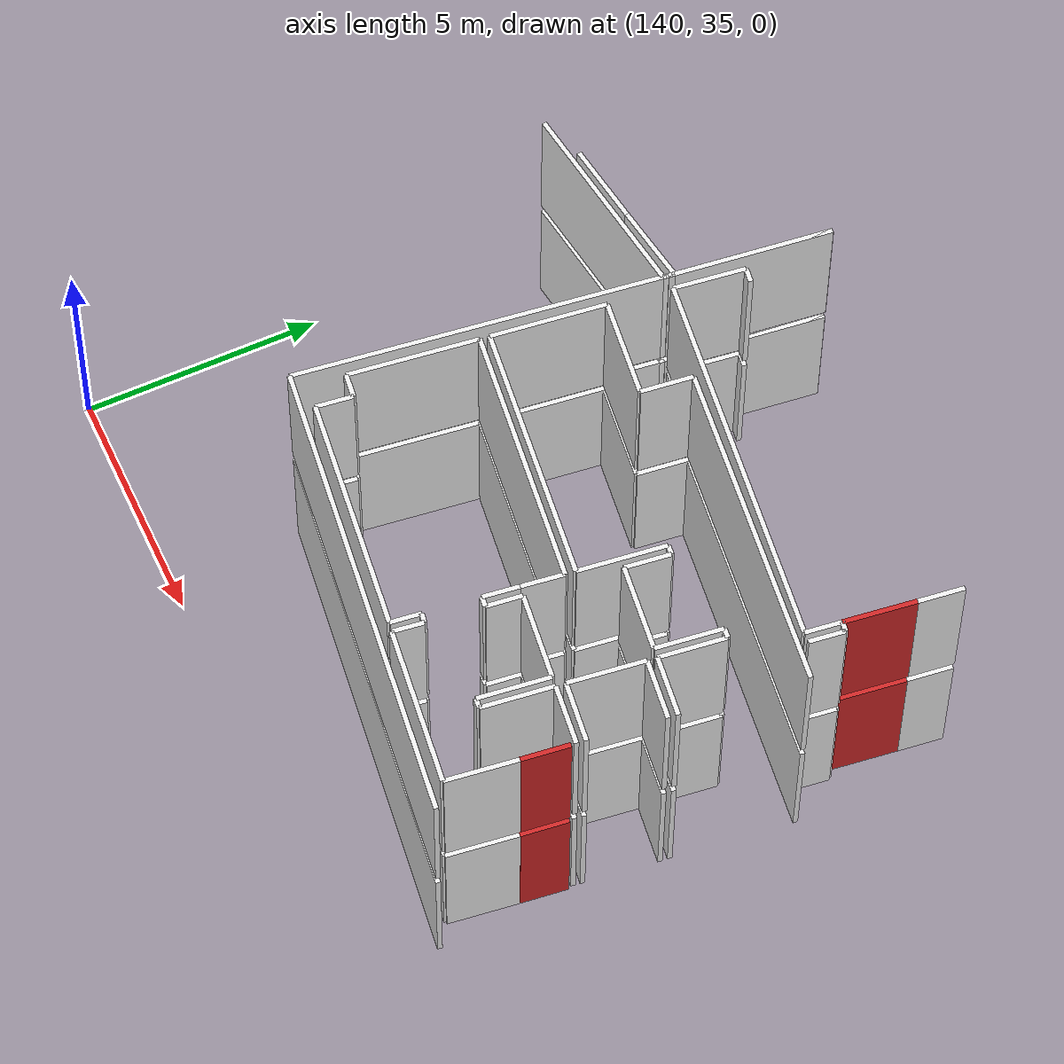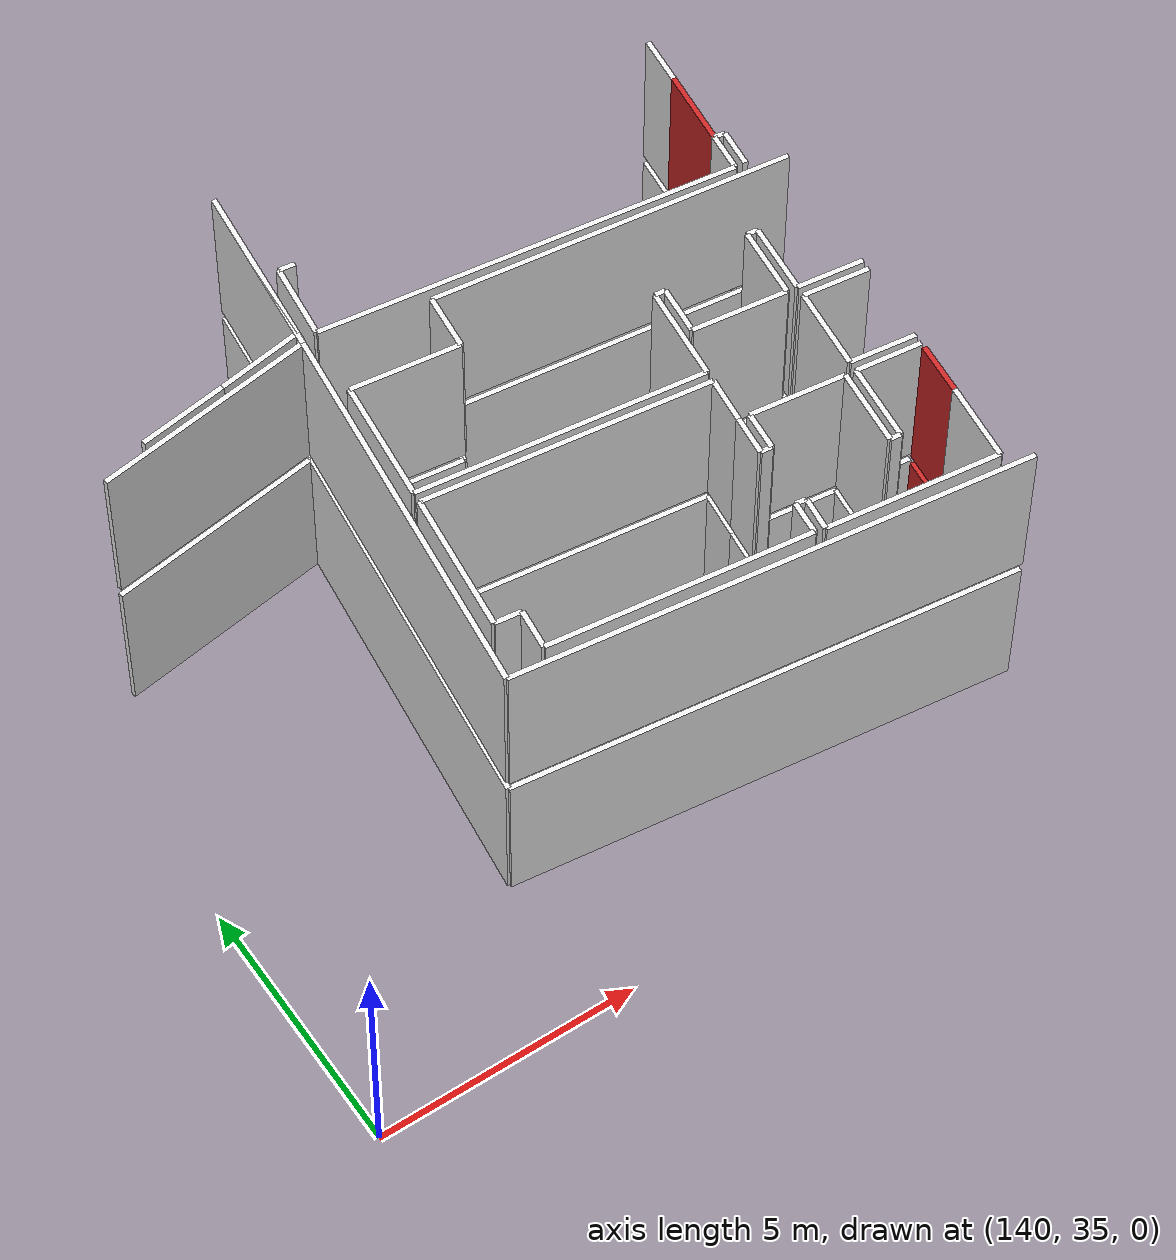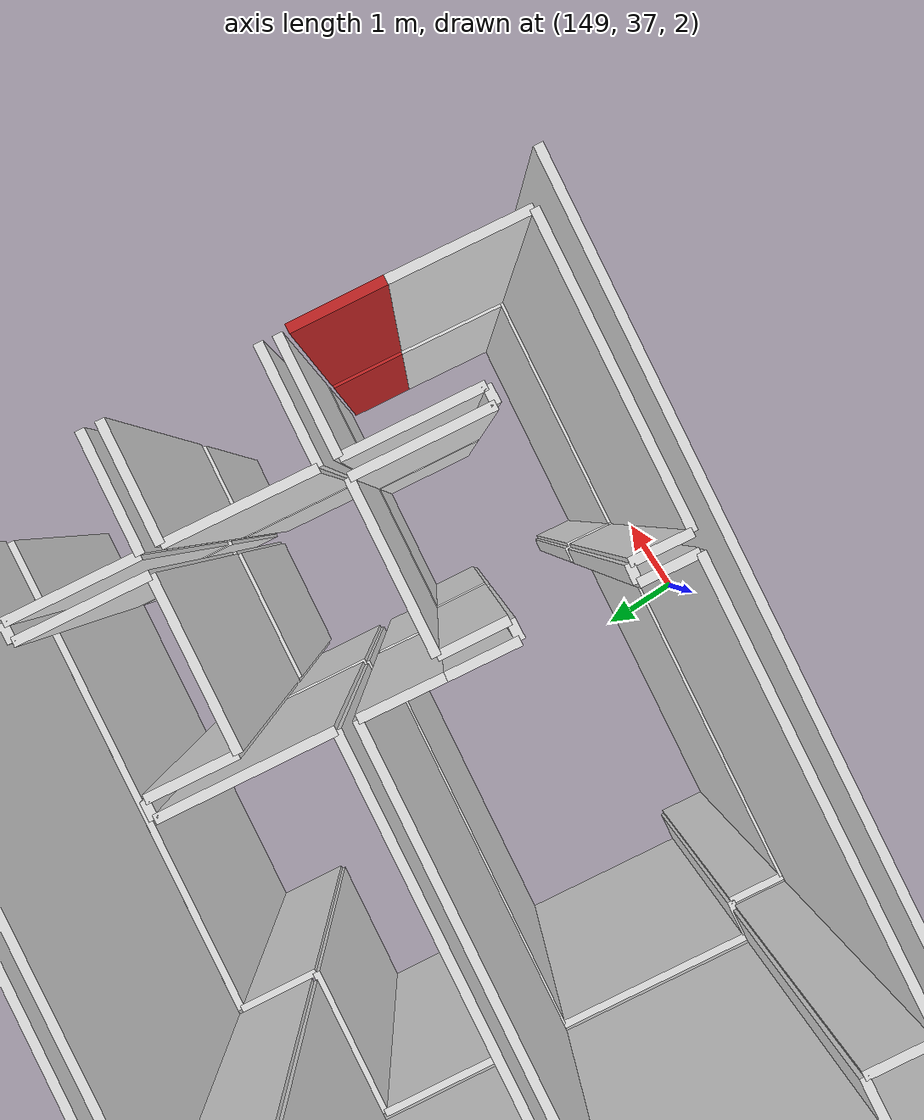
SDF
<sdf version="1.6">
 <world name="default">
  <model name="wall_153.8_39.0_0.0">
   <static>true</static>
   <pose>153.77499999999418 38.99500000011176 1.5 0 0 -1.6814535479881518</pose>
   <link name="link">
    <visual name="visual">
     <geometry><box><size>0.9960923654221514 0.1 3</size></box></geometry>
     <material>
      <script><uri>file://media/materials/scripts/gazebo.material</uri><name>Gazebo/Red</name></script>
     </material>
    </visual>
   </link>
  </model>
  <model name="wall_153.7_45.9_0.0">
   <static>true</static>
   <pose>153.6600000000035 45.92999999993481 1.5 0 0 -1.6918235466009592</pose>
   <link name="link">
    <visual name="visual">
     <geometry><box><size>1.4909057649436974 0.1 3</size></box></geometry>
     <material>
      <script><uri>file://media/materials/scripts/gazebo.material</uri><name>Gazebo/Red</name></script>
     </material>
    </visual>
   </link>
  </model>
  <model name="wall_150.4_39.6_0.0">
   <static>true</static>
   <pose>150.3649999999907 39.61500000022352 1.5 0 0 1.4513674008194029</pose>
   <link name="link">
    <visual name="visual">
     <geometry><box><size>0.7553806987169667 0.1 3</size></box></geometry>
     <material>
      <script><uri>file://media/materials/scripts/gazebo.material</uri><name>Gazebo/White</name></script>
     </material>
    </visual>
   </link>
  </model>
  <model name="wall_150.5_40.4_0.0">
   <static>true</static>
   <pose>150.4649999999965 40.43000000016764 1.5 0 0 1.4464413321830076</pose>
   <link name="link">
    <visual name="visual">
     <geometry><box><size>0.8868483522074317 0.1 3</size></box></geometry>
     <material>
      <script><uri>file://media/materials/scripts/gazebo.material</uri><name>Gazebo/White</name></script>
     </material>
    </visual>
   </link>
  </model>
  <model name="wall_147.8_41.2_0.0">
   <static>true</static>
   <pose>147.83500000002095 41.18500000005588 1.5 0 0 3.0248080581405947</pose>
   <link name="link">
    <visual name="visual">
     <geometry><box><size>5.406829015218547 0.1 3</size></box></geometry>
     <material>
      <script><uri>file://media/materials/scripts/gazebo.material</uri><name>Gazebo/White</name></script>
     </material>
    </visual>
   </link>
  </model>
  <model name="wall_145.0_40.2_0.0">
   <static>true</static>
   <pose>144.9900000000198 40.16500000003725 1.5 0 0 -1.690077564147906</pose>
   <link name="link">
    <visual name="visual">
     <geometry><box><size>2.689107658612167 0.1 3</size></box></geometry>
     <material>
      <script><uri>file://media/materials/scripts/gazebo.material</uri><name>Gazebo/White</name></script>
     </material>
    </visual>
   </link>
  </model>
  <model name="wall_145.1_38.8_0.0">
   <static>true</static>
   <pose>145.0800000000163 38.800000000046566 1.5 0 0 -0.11942892612851068</pose>
   <link name="link">
    <visual name="visual">
     <geometry><box><size>0.5035871324872246 0.1 3</size></box></geometry>
     <material>
      <script><uri>file://media/materials/scripts/gazebo.material</uri><name>Gazebo/White</name></script>
     </material>
    </visual>
   </link>
  </model>
  <model name="wall_145.3_38.4_0.0">
   <static>true</static>
   <pose>145.2850000000035 38.389999999897555 1.5 0 0 -1.6886684299881376</pose>
   <link name="link">
    <visual name="visual">
     <geometry><box><size>0.7653103947893748 0.1 3</size></box></geometry>
     <material>
      <script><uri>file://media/materials/scripts/gazebo.material</uri><name>Gazebo/White</name></script>
     </material>
    </visual>
   </link>
  </model>
  <model name="wall_147.7_37.7_0.0">
   <static>true</static>
   <pose>147.67499999998836 37.7249999998603 1.5 0 0 -0.11651301006280392</pose>
   <link name="link">
    <visual name="visual">
     <geometry><box><size>4.90324382422122 0.1 3</size></box></geometry>
     <material>
      <script><uri>file://media/materials/scripts/gazebo.material</uri><name>Gazebo/White</name></script>
     </material>
    </visual>
   </link>
  </model>
  <model name="wall_150.1_37.8_0.0">
   <static>true</static>
   <pose>150.14499999998952 37.75499999988824 1.5 0 0 1.4601391055905788</pose>
   <link name="link">
    <visual name="visual">
     <geometry><box><size>0.6338769595593153 0.1 3</size></box></geometry>
     <material>
      <script><uri>file://media/materials/scripts/gazebo.material</uri><name>Gazebo/White</name></script>
     </material>
    </visual>
   </link>
  </model>
  <model name="wall_150.3_38.1_0.0">
   <static>true</static>
   <pose>150.27999999999884 38.05499999993481 1.5 0 0 -0.14888994659904642</pose>
   <link name="link">
    <visual name="visual">
     <geometry><box><size>0.20223748414268597 0.1 3</size></box></geometry>
     <material>
      <script><uri>file://media/materials/scripts/gazebo.material</uri><name>Gazebo/White</name></script>
     </material>
    </visual>
   </link>
  </model>
  <model name="wall_150.3_37.7_0.0">
   <static>true</static>
   <pose>150.3399999999965 37.71999999997206 1.5 0 0 -1.695151321341658</pose>
   <link name="link">
    <visual name="visual">
     <geometry><box><size>0.6449806199952839 0.1 3</size></box></geometry>
     <material>
      <script><uri>file://media/materials/scripts/gazebo.material</uri><name>Gazebo/White</name></script>
     </material>
    </visual>
   </link>
  </model>
  <model name="wall_151.9_37.2_0.0">
   <static>true</static>
   <pose>151.9199999999837 37.20999999996275 1.5 0 0 -0.11675057835937525</pose>
   <link name="link">
    <visual name="visual">
     <geometry><box><size>3.2622078413023767 0.1 3</size></box></geometry>
     <material>
      <script><uri>file://media/materials/scripts/gazebo.material</uri><name>Gazebo/White</name></script>
     </material>
    </visual>
   </link>
  </model>
  <model name="wall_153.6_37.8_0.0">
   <static>true</static>
   <pose>153.62999999997555 37.76000000000931 1.5 0 0 1.449769106988834</pose>
   <link name="link">
    <visual name="visual">
     <geometry><box><size>1.4909057649436974 0.1 3</size></box></geometry>
     <material>
      <script><uri>file://media/materials/scripts/gazebo.material</uri><name>Gazebo/White</name></script>
     </material>
    </visual>
   </link>
  </model>
  <model name="wall_153.2_39.7_0.0">
   <static>true</static>
   <pose>153.22000000000116 39.65999999991618 1.5 0 0 3.0291655226601732</pose>
   <link name="link">
    <visual name="visual">
     <geometry><box><size>1.2478781992477335 0.1 3</size></box></geometry>
     <material>
      <script><uri>file://media/materials/scripts/gazebo.material</uri><name>Gazebo/White</name></script>
     </material>
    </visual>
   </link>
  </model>
  <model name="wall_152.5_39.0_0.0">
   <static>true</static>
   <pose>152.51499999998487 38.98999999999069 1.5 0 0 -1.6851599802083586</pose>
   <link name="link">
    <visual name="visual">
     <geometry><box><size>1.4897315194152685 0.1 3</size></box></geometry>
     <material>
      <script><uri>file://media/materials/scripts/gazebo.material</uri><name>Gazebo/White</name></script>
     </material>
    </visual>
   </link>
  </model>
  <model name="wall_152.3_38.3_0.0">
   <static>true</static>
   <pose>152.3299999999872 38.26000000000931 1.5 0 0 3.0419240010121844</pose>
   <link name="link">
    <visual name="visual">
     <geometry><box><size>0.20099751243585498 0.1 3</size></box></geometry>
     <material>
      <script><uri>file://media/materials/scripts/gazebo.material</uri><name>Gazebo/White</name></script>
     </material>
    </visual>
   </link>
  </model>
  <model name="wall_152.3_39.0_0.0">
   <static>true</static>
   <pose>152.31500000000233 39.01000000000931 1.5 0 0 1.4564326733426174</pose>
   <link name="link">
    <visual name="visual">
     <geometry><box><size>1.4897315194219107 0.1 3</size></box></geometry>
     <material>
      <script><uri>file://media/materials/scripts/gazebo.material</uri><name>Gazebo/White</name></script>
     </material>
    </visual>
   </link>
  </model>
  <model name="wall_151.5_39.9_0.0">
   <static>true</static>
   <pose>151.50500000000466 39.85499999998137 1.5 0 0 3.0248080581431034</pose>
   <link name="link">
    <visual name="visual">
     <geometry><box><size>1.8022763384447233 0.1 3</size></box></geometry>
     <material>
      <script><uri>file://media/materials/scripts/gazebo.material</uri><name>Gazebo/White</name></script>
     </material>
    </visual>
   </link>
  </model>
  <model name="wall_150.6_39.6_0.0">
   <static>true</static>
   <pose>150.57000000000698 39.59000000008382 1.5 0 0 -1.6784861976067038</pose>
   <link name="link">
    <visual name="visual">
     <geometry><box><size>0.7443117623918901 0.1 3</size></box></geometry>
     <material>
      <script><uri>file://media/materials/scripts/gazebo.material</uri><name>Gazebo/White</name></script>
     </material>
    </visual>
   </link>
  </model>
  <model name="wall_150.4_39.2_0.0">
   <static>true</static>
   <pose>150.42500000001746 39.230000000214204 1.5 0 0 3.0466409471685547</pose>
   <link name="link">
    <visual name="visual">
     <geometry><box><size>0.21095023111991618 0.1 3</size></box></geometry>
     <material>
      <script><uri>file://media/materials/scripts/gazebo.material</uri><name>Gazebo/White</name></script>
     </material>
    </visual>
   </link>
  </model>
  <model name="wall_153.8_47.1_0.0">
   <static>true</static>
   <pose>153.80499999999302 47.139999999897555 1.5 0 0 -1.6872877874817485</pose>
   <link name="link">
    <visual name="visual">
     <geometry><box><size>0.9464142855493431 0.1 3</size></box></geometry>
     <material>
      <script><uri>file://media/materials/scripts/gazebo.material</uri><name>Gazebo/White</name></script>
     </material>
    </visual>
   </link>
  </model>
  <model name="wall_153.5_44.8_0.0">
   <static>true</static>
   <pose>153.52499999999418 44.81499999994412 1.5 0 0 -1.6902252528468988</pose>
   <link name="link">
    <visual name="visual">
     <geometry><box><size>0.7553806987239018 0.1 3</size></box></geometry>
     <material>
      <script><uri>file://media/materials/scripts/gazebo.material</uri><name>Gazebo/White</name></script>
     </material>
    </visual>
   </link>
  </model>
  <model name="wall_149.6_44.9_0.0">
   <static>true</static>
   <pose>149.55499999999302 44.91500000003725 1.5 0 0 3.0211592075440525</pose>
   <link name="link">
    <visual name="visual">
     <geometry><box><size>7.907275131168029 0.1 3</size></box></geometry>
     <material>
      <script><uri>file://media/materials/scripts/gazebo.material</uri><name>Gazebo/White</name></script>
     </material>
    </visual>
   </link>
  </model>
  <model name="wall_145.7_46.1_0.0">
   <static>true</static>
   <pose>145.72000000000116 46.13000000012107 1.5 0 0 1.449769106988834</pose>
   <link name="link">
    <visual name="visual">
     <geometry><box><size>1.4909057649436974 0.1 3</size></box></geometry>
     <material>
      <script><uri>file://media/materials/scripts/gazebo.material</uri><name>Gazebo/White</name></script>
     </material>
    </visual>
   </link>
  </model>
  <model name="wall_146.0_46.9_0.0">
   <static>true</static>
   <pose>145.95999999999185 46.85000000009313 1.5 0 0 -0.132551532423765</pose>
   <link name="link">
    <visual name="visual">
     <geometry><box><size>0.3026549190018152 0.1 3</size></box></geometry>
     <material>
      <script><uri>file://media/materials/scripts/gazebo.material</uri><name>Gazebo/White</name></script>
     </material>
    </visual>
   </link>
  </model>
  <model name="wall_153.4_41.4_0.0">
   <static>true</static>
   <pose>153.43499999999767 41.43499999982305 1.5 0 0 3.022163727644903</pose>
   <link name="link">
    <visual name="visual">
     <geometry><box><size>1.258967831190321 0.1 3</size></box></geometry>
     <material>
      <script><uri>file://media/materials/scripts/gazebo.material</uri><name>Gazebo/White</name></script>
     </material>
    </visual>
   </link>
  </model>
  <model name="wall_152.7_40.7_0.0">
   <static>true</static>
   <pose>152.7149999999965 40.71999999997206 1.5 0 0 -1.6904748161031404</pose>
   <link name="link">
    <visual name="visual">
     <geometry><box><size>1.5913830458958753 0.1 3</size></box></geometry>
     <material>
      <script><uri>file://media/materials/scripts/gazebo.material</uri><name>Gazebo/White</name></script>
     </material>
    </visual>
   </link>
  </model>
  <model name="wall_153.2_39.9_0.0">
   <static>true</static>
   <pose>153.24499999999534 39.85499999998137 1.5 0 0 -0.11942892631213106</pose>
   <link name="link">
    <visual name="visual">
     <geometry><box><size>1.2589678312458021 0.1 3</size></box></geometry>
     <material>
      <script><uri>file://media/materials/scripts/gazebo.material</uri><name>Gazebo/White</name></script>
     </material>
    </visual>
   </link>
  </model>
  <model name="wall_153.7_44.8_0.0">
   <static>true</static>
   <pose>153.72500000000582 44.79000000003725 1.5 0 0 1.4497691069877865</pose>
   <link name="link">
    <visual name="visual">
     <geometry><box><size>0.74545288270649 0.1 3</size></box></geometry>
     <material>
      <script><uri>file://media/materials/scripts/gazebo.material</uri><name>Gazebo/White</name></script>
     </material>
    </visual>
   </link>
  </model>
  <model name="wall_153.7_45.2_0.0">
   <static>true</static>
   <pose>153.6700000000128 45.175000000046566 1.5 0 0 2.992702706990747</pose>
   <link name="link">
    <visual name="visual">
     <geometry><box><size>0.20223748414268597 0.1 3</size></box></geometry>
     <material>
      <script><uri>file://media/materials/scripts/gazebo.material</uri><name>Gazebo/White</name></script>
     </material>
    </visual>
   </link>
  </model>
  <model name="wall_153.5_41.6_0.0">
   <static>true</static>
   <pose>153.4550000000163 41.63500000000931 1.5 0 0 3.022163727644903</pose>
   <link name="link">
    <visual name="visual">
     <geometry><box><size>1.258967831190321 0.1 3</size></box></geometry>
     <material>
      <script><uri>file://media/materials/scripts/gazebo.material</uri><name>Gazebo/White</name></script>
     </material>
    </visual>
   </link>
  </model>
  <model name="wall_152.9_42.4_0.0">
   <static>true</static>
   <pose>152.9100000000035 42.39999999990687 1.5 0 0 1.4553696664370197</pose>
   <link name="link">
    <visual name="visual">
     <geometry><box><size>1.3892443988310157 0.1 3</size></box></geometry>
     <material>
      <script><uri>file://media/materials/scripts/gazebo.material</uri><name>Gazebo/White</name></script>
     </material>
    </visual>
   </link>
  </model>
  <model name="wall_152.9_43.1_0.0">
   <static>true</static>
   <pose>152.88999999998487 43.0999999998603 1.5 0 0 3.0419240010121844</pose>
   <link name="link">
    <visual name="visual">
     <geometry><box><size>0.20099751243585498 0.1 3</size></box></geometry>
     <material>
      <script><uri>file://media/materials/scripts/gazebo.material</uri><name>Gazebo/White</name></script>
     </material>
    </visual>
   </link>
  </model>
  <model name="wall_152.7_42.4_0.0">
   <static>true</static>
   <pose>152.70999999999185 42.419999999925494 1.5 0 0 -1.6862229871527734</pose>
   <link name="link">
    <visual name="visual">
     <geometry><box><size>1.3892443988310157 0.1 3</size></box></geometry>
     <material>
      <script><uri>file://media/materials/scripts/gazebo.material</uri><name>Gazebo/White</name></script>
     </material>
    </visual>
   </link>
  </model>
  <model name="wall_151.7_41.8_0.0">
   <static>true</static>
   <pose>151.73500000001513 41.83499999996275 1.5 0 0 3.02480805813934</pose>
   <link name="link">
    <visual name="visual">
     <geometry><box><size>1.8022763383869123 0.1 3</size></box></geometry>
     <material>
      <script><uri>file://media/materials/scripts/gazebo.material</uri><name>Gazebo/White</name></script>
     </material>
    </visual>
   </link>
  </model>
  <model name="wall_150.9_42.4_0.0">
   <static>true</static>
   <pose>150.89500000001863 42.40999999991618 1.5 0 0 1.4543048661080447</pose>
   <link name="link">
    <visual name="visual">
     <geometry><box><size>0.9464142855493431 0.1 3</size></box></geometry>
     <material>
      <script><uri>file://media/materials/scripts/gazebo.material</uri><name>Gazebo/White</name></script>
     </material>
    </visual>
   </link>
  </model>
  <model name="wall_150.9_42.9_0.0">
   <static>true</static>
   <pose>150.85000000000582 42.889999999897555 1.5 0 0 3.0419240010121844</pose>
   <link name="link">
    <visual name="visual">
     <geometry><box><size>0.20099751243585498 0.1 3</size></box></geometry>
     <material>
      <script><uri>file://media/materials/scripts/gazebo.material</uri><name>Gazebo/White</name></script>
     </material>
    </visual>
   </link>
  </model>
  <model name="wall_150.6_42.0_0.0">
   <static>true</static>
   <pose>150.64499999998952 41.98999999999069 1.5 0 0 -1.6856729322336463</pose>
   <link name="link">
    <visual name="visual">
     <geometry><box><size>1.8320753257982048 0.1 3</size></box></geometry>
     <material>
      <script><uri>file://media/materials/scripts/gazebo.material</uri><name>Gazebo/White</name></script>
     </material>
    </visual>
   </link>
  </model>
  <model name="wall_147.9_41.4_0.0">
   <static>true</static>
   <pose>147.85499999998137 41.390000000130385 1.5 0 0 3.026645366783984</pose>
   <link name="link">
    <visual name="visual">
     <geometry><box><size>5.405672946089928 0.1 3</size></box></geometry>
     <material>
      <script><uri>file://media/materials/scripts/gazebo.material</uri><name>Gazebo/White</name></script>
     </material>
    </visual>
   </link>
  </model>
  <model name="wall_145.3_42.9_0.0">
   <static>true</static>
   <pose>145.30499999999302 42.88500000000931 1.5 0 0 1.4573613349631278</pose>
   <link name="link">
    <visual name="visual">
     <geometry><box><size>2.385330165476587 0.1 3</size></box></geometry>
     <material>
      <script><uri>file://media/materials/scripts/gazebo.material</uri><name>Gazebo/White</name></script>
     </material>
    </visual>
   </link>
  </model>
  <model name="wall_146.5_43.9_0.0">
   <static>true</static>
   <pose>146.45999999999185 43.949999999953434 1.5 0 0 -0.11710874445097873</pose>
   <link name="link">
    <visual name="visual">
     <geometry><box><size>2.0540691321857394 0.1 3</size></box></geometry>
     <material>
      <script><uri>file://media/materials/scripts/gazebo.material</uri><name>Gazebo/White</name></script>
     </material>
    </visual>
   </link>
  </model>
  <model name="wall_147.5_44.4_0.0">
   <static>true</static>
   <pose>147.53999999997905 44.37000000011176 1.5 0 0 1.460139105632832</pose>
   <link name="link">
    <visual name="visual">
     <geometry><box><size>1.086646216650026 0.1 3</size></box></geometry>
     <material>
      <script><uri>file://media/materials/scripts/gazebo.material</uri><name>Gazebo/White</name></script>
     </material>
    </visual>
   </link>
  </model>
  <model name="wall_151.0_44.5_0.0">
   <static>true</static>
   <pose>150.9899999999907 44.5250000001397 1.5 0 0 -0.11308479368536209</pose>
   <link name="link">
    <visual name="visual">
     <geometry><box><size>6.8235841022447685 0.1 3</size></box></geometry>
     <material>
      <script><uri>file://media/materials/scripts/gazebo.material</uri><name>Gazebo/White</name></script>
     </material>
    </visual>
   </link>
  </model>
  <model name="wall_145.5_47.2_0.0">
   <static>true</static>
   <pose>145.52999999999884 47.169999999925494 1.5 0 0 -1.6814535479747077</pose>
   <link name="link">
    <visual name="visual">
     <geometry><box><size>3.259938649956506 0.1 3</size></box></geometry>
     <material>
      <script><uri>file://media/materials/scripts/gazebo.material</uri><name>Gazebo/White</name></script>
     </material>
    </visual>
   </link>
  </model>
  <model name="wall_144.5_45.4_0.0">
   <static>true</static>
   <pose>144.53999999997905 45.41499999980442 1.5 0 0 -2.9764439761635133</pose>
   <link name="link">
    <visual name="visual">
     <geometry><box><size>1.6423458831789883 0.1 3</size></box></geometry>
     <material>
      <script><uri>file://media/materials/scripts/gazebo.material</uri><name>Gazebo/White</name></script>
     </material>
    </visual>
   </link>
  </model>
  <model name="wall_142.9_45.1_0.0">
   <static>true</static>
   <pose>142.88999999998487 45.14999999990687 1.5 0 0 -2.9880488711795428</pose>
   <link name="link">
    <visual name="visual">
     <geometry><box><size>1.6999999999589122 0.1 3</size></box></geometry>
     <material>
      <script><uri>file://media/materials/scripts/gazebo.material</uri><name>Gazebo/White</name></script>
     </material>
    </visual>
   </link>
  </model>
  <model name="wall_143.2_45.0_0.0">
   <static>true</static>
   <pose>143.22500000000582 45.0 1.5 0 0 0.15157309554865728</pose>
   <link name="link">
    <visual name="visual">
     <geometry><box><size>4.238596465764388 0.1 3</size></box></geometry>
     <material>
      <script><uri>file://media/materials/scripts/gazebo.material</uri><name>Gazebo/White</name></script>
     </material>
    </visual>
   </link>
  </model>
  <model name="wall_144.9_41.6_0.0">
   <static>true</static>
   <pose>144.8649999999907 41.574999999953434 1.5 0 0 -1.6916990911057475</pose>
   <link name="link">
    <visual name="visual">
     <geometry><box><size>7.545077865498275 0.1 3</size></box></geometry>
     <material>
      <script><uri>file://media/materials/scripts/gazebo.material</uri><name>Gazebo/White</name></script>
     </material>
    </visual>
   </link>
  </model>
  <model name="wall_149.2_37.3_0.0">
   <static>true</static>
   <pose>149.20999999999185 37.25500000012107 1.5 0 0 -0.11922354502951144</pose>
   <link name="link">
    <visual name="visual">
     <geometry><box><size>9.668634857127264 0.1 3</size></box></geometry>
     <material>
      <script><uri>file://media/materials/scripts/gazebo.material</uri><name>Gazebo/White</name></script>
     </material>
    </visual>
   </link>
  </model>
  <model name="wall_145.5_47.1_0.0">
   <static>true</static>
   <pose>145.51500000001397 47.05499999993481 1.5 0 0 -1.6827185694293054</pose>
   <link name="link">
    <visual name="visual">
     <geometry><box><size>3.4918476486572034 0.1 3</size></box></geometry>
     <material>
      <script><uri>file://media/materials/scripts/gazebo.material</uri><name>Gazebo/White</name></script>
     </material>
    </visual>
   </link>
  </model>
  <model name="wall_145.3_45.4_0.0">
   <static>true</static>
   <pose>145.3300000000163 45.36999999987893 1.5 0 0 1.373400766945016</pose>
   <link name="link">
    <visual name="visual">
     <geometry><box><size>0.10198039036683233 0.1 3</size></box></geometry>
     <material>
      <script><uri>file://media/materials/scripts/gazebo.material</uri><name>Gazebo/White</name></script>
     </material>
    </visual>
   </link>
  </model>
  <model name="wall_145.3_45.5_0.0">
   <static>true</static>
   <pose>145.34500000000116 45.484999999869615 1.5 0 0 1.4940244358332768</pose>
   <link name="link">
    <visual name="visual">
     <geometry><box><size>0.13038404798887343 0.1 3</size></box></geometry>
     <material>
      <script><uri>file://media/materials/scripts/gazebo.material</uri><name>Gazebo/White</name></script>
     </material>
    </visual>
   </link>
  </model>
  <model name="wall_153.8_39.0_3.2">
   <static>true</static>
   <pose>153.77499999999418 38.99500000011176 4.7 0 0 -1.6814535479881518</pose>
   <link name="link">
    <visual name="visual">
     <geometry><box><size>0.9960923654221514 0.1 3</size></box></geometry>
     <material>
      <script><uri>file://media/materials/scripts/gazebo.material</uri><name>Gazebo/Red</name></script>
     </material>
    </visual>
   </link>
  </model>
  <model name="wall_153.7_45.9_3.2">
   <static>true</static>
   <pose>153.6600000000035 45.92999999993481 4.7 0 0 -1.6918235466009592</pose>
   <link name="link">
    <visual name="visual">
     <geometry><box><size>1.4909057649436974 0.1 3</size></box></geometry>
     <material>
      <script><uri>file://media/materials/scripts/gazebo.material</uri><name>Gazebo/Red</name></script>
     </material>
    </visual>
   </link>
  </model>
  <model name="wall_150.4_39.6_3.2">
   <static>true</static>
   <pose>150.3649999999907 39.61500000022352 4.7 0 0 1.4513674008194029</pose>
   <link name="link">
    <visual name="visual">
     <geometry><box><size>0.7553806987169667 0.1 3</size></box></geometry>
     <material>
      <script><uri>file://media/materials/scripts/gazebo.material</uri><name>Gazebo/White</name></script>
     </material>
    </visual>
   </link>
  </model>
  <model name="wall_150.5_40.4_3.2">
   <static>true</static>
   <pose>150.4649999999965 40.43000000016764 4.7 0 0 1.4464413321830076</pose>
   <link name="link">
    <visual name="visual">
     <geometry><box><size>0.8868483522074317 0.1 3</size></box></geometry>
     <material>
      <script><uri>file://media/materials/scripts/gazebo.material</uri><name>Gazebo/White</name></script>
     </material>
    </visual>
   </link>
  </model>
  <model name="wall_147.8_41.2_3.2">
   <static>true</static>
   <pose>147.83500000002095 41.18500000005588 4.7 0 0 3.0248080581405947</pose>
   <link name="link">
    <visual name="visual">
     <geometry><box><size>5.406829015218547 0.1 3</size></box></geometry>
     <material>
      <script><uri>file://media/materials/scripts/gazebo.material</uri><name>Gazebo/White</name></script>
     </material>
    </visual>
   </link>
  </model>
  <model name="wall_145.0_40.2_3.2">
   <static>true</static>
   <pose>144.9900000000198 40.16500000003725 4.7 0 0 -1.690077564147906</pose>
   <link name="link">
    <visual name="visual">
     <geometry><box><size>2.689107658612167 0.1 3</size></box></geometry>
     <material>
      <script><uri>file://media/materials/scripts/gazebo.material</uri><name>Gazebo/White</name></script>
     </material>
    </visual>
   </link>
  </model>
  <model name="wall_145.1_38.8_3.2">
   <static>true</static>
   <pose>145.0800000000163 38.800000000046566 4.7 0 0 -0.11942892612851068</pose>
   <link name="link">
    <visual name="visual">
     <geometry><box><size>0.5035871324872246 0.1 3</size></box></geometry>
     <material>
      <script><uri>file://media/materials/scripts/gazebo.material</uri><name>Gazebo/White</name></script>
     </material>
    </visual>
   </link>
  </model>
  <model name="wall_145.3_38.4_3.2">
   <static>true</static>
   <pose>145.2850000000035 38.389999999897555 4.7 0 0 -1.6886684299881376</pose>
   <link name="link">
    <visual name="visual">
     <geometry><box><size>0.7653103947893748 0.1 3</size></box></geometry>
     <material>
      <script><uri>file://media/materials/scripts/gazebo.material</uri><name>Gazebo/White</name></script>
     </material>
    </visual>
   </link>
  </model>
  <model name="wall_147.7_37.7_3.2">
   <static>true</static>
   <pose>147.67499999998836 37.7249999998603 4.7 0 0 -0.11651301006280392</pose>
   <link name="link">
    <visual name="visual">
     <geometry><box><size>4.90324382422122 0.1 3</size></box></geometry>
     <material>
      <script><uri>file://media/materials/scripts/gazebo.material</uri><name>Gazebo/White</name></script>
     </material>
    </visual>
   </link>
  </model>
  <model name="wall_150.1_37.8_3.2">
   <static>true</static>
   <pose>150.14499999998952 37.75499999988824 4.7 0 0 1.4601391055905788</pose>
   <link name="link">
    <visual name="visual">
     <geometry><box><size>0.6338769595593153 0.1 3</size></box></geometry>
     <material>
      <script><uri>file://media/materials/scripts/gazebo.material</uri><name>Gazebo/White</name></script>
     </material>
    </visual>
   </link>
  </model>
  <model name="wall_150.3_38.1_3.2">
   <static>true</static>
   <pose>150.27999999999884 38.05499999993481 4.7 0 0 -0.14888994659904642</pose>
   <link name="link">
    <visual name="visual">
     <geometry><box><size>0.20223748414268597 0.1 3</size></box></geometry>
     <material>
      <script><uri>file://media/materials/scripts/gazebo.material</uri><name>Gazebo/White</name></script>
     </material>
    </visual>
   </link>
  </model>
  <model name="wall_150.3_37.7_3.2">
   <static>true</static>
   <pose>150.3399999999965 37.71999999997206 4.7 0 0 -1.695151321341658</pose>
   <link name="link">
    <visual name="visual">
     <geometry><box><size>0.6449806199952839 0.1 3</size></box></geometry>
     <material>
      <script><uri>file://media/materials/scripts/gazebo.material</uri><name>Gazebo/White</name></script>
     </material>
    </visual>
   </link>
  </model>
  <model name="wall_151.9_37.2_3.2">
   <static>true</static>
   <pose>151.9199999999837 37.20999999996275 4.7 0 0 -0.11675057835937525</pose>
   <link name="link">
    <visual name="visual">
     <geometry><box><size>3.2622078413023767 0.1 3</size></box></geometry>
     <material>
      <script><uri>file://media/materials/scripts/gazebo.material</uri><name>Gazebo/White</name></script>
     </material>
    </visual>
   </link>
  </model>
  <model name="wall_153.6_37.8_3.2">
   <static>true</static>
   <pose>153.62999999997555 37.76000000000931 4.7 0 0 1.449769106988834</pose>
   <link name="link">
    <visual name="visual">
     <geometry><box><size>1.4909057649436974 0.1 3</size></box></geometry>
     <material>
      <script><uri>file://media/materials/scripts/gazebo.material</uri><name>Gazebo/White</name></script>
     </material>
    </visual>
   </link>
  </model>
  <model name="wall_153.2_39.7_3.2">
   <static>true</static>
   <pose>153.22000000000116 39.65999999991618 4.7 0 0 3.0291655226601732</pose>
   <link name="link">
    <visual name="visual">
     <geometry><box><size>1.2478781992477335 0.1 3</size></box></geometry>
     <material>
      <script><uri>file://media/materials/scripts/gazebo.material</uri><name>Gazebo/White</name></script>
     </material>
    </visual>
   </link>
  </model>
  <model name="wall_152.5_39.0_3.2">
   <static>true</static>
   <pose>152.51499999998487 38.98999999999069 4.7 0 0 -1.6851599802083586</pose>
   <link name="link">
    <visual name="visual">
     <geometry><box><size>1.4897315194152685 0.1 3</size></box></geometry>
     <material>
      <script><uri>file://media/materials/scripts/gazebo.material</uri><name>Gazebo/White</name></script>
     </material>
    </visual>
   </link>
  </model>
  <model name="wall_152.3_38.3_3.2">
   <static>true</static>
   <pose>152.3299999999872 38.26000000000931 4.7 0 0 3.0419240010121844</pose>
   <link name="link">
    <visual name="visual">
     <geometry><box><size>0.20099751243585498 0.1 3</size></box></geometry>
     <material>
      <script><uri>file://media/materials/scripts/gazebo.material</uri><name>Gazebo/White</name></script>
     </material>
    </visual>
   </link>
  </model>
  <model name="wall_152.3_39.0_3.2">
   <static>true</static>
   <pose>152.31500000000233 39.01000000000931 4.7 0 0 1.4564326733426174</pose>
   <link name="link">
    <visual name="visual">
     <geometry><box><size>1.4897315194219107 0.1 3</size></box></geometry>
     <material>
      <script><uri>file://media/materials/scripts/gazebo.material</uri><name>Gazebo/White</name></script>
     </material>
    </visual>
   </link>
  </model>
  <model name="wall_151.5_39.9_3.2">
   <static>true</static>
   <pose>151.50500000000466 39.85499999998137 4.7 0 0 3.0248080581431034</pose>
   <link name="link">
    <visual name="visual">
     <geometry><box><size>1.8022763384447233 0.1 3</size></box></geometry>
     <material>
      <script><uri>file://media/materials/scripts/gazebo.material</uri><name>Gazebo/White</name></script>
     </material>
    </visual>
   </link>
  </model>
  <model name="wall_150.6_39.6_3.2">
   <static>true</static>
   <pose>150.57000000000698 39.59000000008382 4.7 0 0 -1.6784861976067038</pose>
   <link name="link">
    <visual name="visual">
     <geometry><box><size>0.7443117623918901 0.1 3</size></box></geometry>
     <material>
      <script><uri>file://media/materials/scripts/gazebo.material</uri><name>Gazebo/White</name></script>
     </material>
    </visual>
   </link>
  </model>
  <model name="wall_150.4_39.2_3.2">
   <static>true</static>
   <pose>150.42500000001746 39.230000000214204 4.7 0 0 3.0466409471685547</pose>
   <link name="link">
    <visual name="visual">
     <geometry><box><size>0.21095023111991618 0.1 3</size></box></geometry>
     <material>
      <script><uri>file://media/materials/scripts/gazebo.material</uri><name>Gazebo/White</name></script>
     </material>
    </visual>
   </link>
  </model>
  <model name="wall_153.8_47.1_3.2">
   <static>true</static>
   <pose>153.80499999999302 47.139999999897555 4.7 0 0 -1.6872877874817485</pose>
   <link name="link">
    <visual name="visual">
     <geometry><box><size>0.9464142855493431 0.1 3</size></box></geometry>
     <material>
      <script><uri>file://media/materials/scripts/gazebo.material</uri><name>Gazebo/White</name></script>
     </material>
    </visual>
   </link>
  </model>
  <model name="wall_153.5_44.8_3.2">
   <static>true</static>
   <pose>153.52499999999418 44.81499999994412 4.7 0 0 -1.6902252528468988</pose>
   <link name="link">
    <visual name="visual">
     <geometry><box><size>0.7553806987239018 0.1 3</size></box></geometry>
     <material>
      <script><uri>file://media/materials/scripts/gazebo.material</uri><name>Gazebo/White</name></script>
     </material>
    </visual>
   </link>
  </model>
  <model name="wall_149.6_44.9_3.2">
   <static>true</static>
   <pose>149.55499999999302 44.91500000003725 4.7 0 0 3.0211592075440525</pose>
   <link name="link">
    <visual name="visual">
     <geometry><box><size>7.907275131168029 0.1 3</size></box></geometry>
     <material>
      <script><uri>file://media/materials/scripts/gazebo.material</uri><name>Gazebo/White</name></script>
     </material>
    </visual>
   </link>
  </model>
  <model name="wall_145.7_46.1_3.2">
   <static>true</static>
   <pose>145.72000000000116 46.13000000012107 4.7 0 0 1.449769106988834</pose>
   <link name="link">
    <visual name="visual">
     <geometry><box><size>1.4909057649436974 0.1 3</size></box></geometry>
     <material>
      <script><uri>file://media/materials/scripts/gazebo.material</uri><name>Gazebo/White</name></script>
     </material>
    </visual>
   </link>
  </model>
  <model name="wall_146.0_46.9_3.2">
   <static>true</static>
   <pose>145.95999999999185 46.85000000009313 4.7 0 0 -0.132551532423765</pose>
   <link name="link">
    <visual name="visual">
     <geometry><box><size>0.3026549190018152 0.1 3</size></box></geometry>
     <material>
      <script><uri>file://media/materials/scripts/gazebo.material</uri><name>Gazebo/White</name></script>
     </material>
    </visual>
   </link>
  </model>
  <model name="wall_153.4_41.4_3.2">
   <static>true</static>
   <pose>153.43499999999767 41.43499999982305 4.7 0 0 3.022163727644903</pose>
   <link name="link">
    <visual name="visual">
     <geometry><box><size>1.258967831190321 0.1 3</size></box></geometry>
     <material>
      <script><uri>file://media/materials/scripts/gazebo.material</uri><name>Gazebo/White</name></script>
     </material>
    </visual>
   </link>
  </model>
  <model name="wall_152.7_40.7_3.2">
   <static>true</static>
   <pose>152.7149999999965 40.71999999997206 4.7 0 0 -1.6904748161031404</pose>
   <link name="link">
    <visual name="visual">
     <geometry><box><size>1.5913830458958753 0.1 3</size></box></geometry>
     <material>
      <script><uri>file://media/materials/scripts/gazebo.material</uri><name>Gazebo/White</name></script>
     </material>
    </visual>
   </link>
  </model>
  <model name="wall_153.2_39.9_3.2">
   <static>true</static>
   <pose>153.24499999999534 39.85499999998137 4.7 0 0 -0.11942892631213106</pose>
   <link name="link">
    <visual name="visual">
     <geometry><box><size>1.2589678312458021 0.1 3</size></box></geometry>
     <material>
      <script><uri>file://media/materials/scripts/gazebo.material</uri><name>Gazebo/White</name></script>
     </material>
    </visual>
   </link>
  </model>
  <model name="wall_153.7_44.8_3.2">
   <static>true</static>
   <pose>153.72500000000582 44.79000000003725 4.7 0 0 1.4497691069877865</pose>
   <link name="link">
    <visual name="visual">
     <geometry><box><size>0.74545288270649 0.1 3</size></box></geometry>
     <material>
      <script><uri>file://media/materials/scripts/gazebo.material</uri><name>Gazebo/White</name></script>
     </material>
    </visual>
   </link>
  </model>
  <model name="wall_153.7_45.2_3.2">
   <static>true</static>
   <pose>153.6700000000128 45.175000000046566 4.7 0 0 2.992702706990747</pose>
   <link name="link">
    <visual name="visual">
     <geometry><box><size>0.20223748414268597 0.1 3</size></box></geometry>
     <material>
      <script><uri>file://media/materials/scripts/gazebo.material</uri><name>Gazebo/White</name></script>
     </material>
    </visual>
   </link>
  </model>
  <model name="wall_153.5_41.6_3.2">
   <static>true</static>
   <pose>153.4550000000163 41.63500000000931 4.7 0 0 3.022163727644903</pose>
   <link name="link">
    <visual name="visual">
     <geometry><box><size>1.258967831190321 0.1 3</size></box></geometry>
     <material>
      <script><uri>file://media/materials/scripts/gazebo.material</uri><name>Gazebo/White</name></script>
     </material>
    </visual>
   </link>
  </model>
  <model name="wall_152.9_42.4_3.2">
   <static>true</static>
   <pose>152.9100000000035 42.39999999990687 4.7 0 0 1.4553696664370197</pose>
   <link name="link">
    <visual name="visual">
     <geometry><box><size>1.3892443988310157 0.1 3</size></box></geometry>
     <material>
      <script><uri>file://media/materials/scripts/gazebo.material</uri><name>Gazebo/White</name></script>
     </material>
    </visual>
   </link>
  </model>
  <model name="wall_152.9_43.1_3.2">
   <static>true</static>
   <pose>152.88999999998487 43.0999999998603 4.7 0 0 3.0419240010121844</pose>
   <link name="link">
    <visual name="visual">
     <geometry><box><size>0.20099751243585498 0.1 3</size></box></geometry>
     <material>
      <script><uri>file://media/materials/scripts/gazebo.material</uri><name>Gazebo/White</name></script>
     </material>
    </visual>
   </link>
  </model>
  <model name="wall_152.7_42.4_3.2">
   <static>true</static>
   <pose>152.70999999999185 42.419999999925494 4.7 0 0 -1.6862229871527734</pose>
   <link name="link">
    <visual name="visual">
     <geometry><box><size>1.3892443988310157 0.1 3</size></box></geometry>
     <material>
      <script><uri>file://media/materials/scripts/gazebo.material</uri><name>Gazebo/White</name></script>
     </material>
    </visual>
   </link>
  </model>
  <model name="wall_151.7_41.8_3.2">
   <static>true</static>
   <pose>151.73500000001513 41.83499999996275 4.7 0 0 3.02480805813934</pose>
   <link name="link">
    <visual name="visual">
     <geometry><box><size>1.8022763383869123 0.1 3</size></box></geometry>
     <material>
      <script><uri>file://media/materials/scripts/gazebo.material</uri><name>Gazebo/White</name></script>
     </material>
    </visual>
   </link>
  </model>
  <model name="wall_150.9_42.4_3.2">
   <static>true</static>
   <pose>150.89500000001863 42.40999999991618 4.7 0 0 1.4543048661080447</pose>
   <link name="link">
    <visual name="visual">
     <geometry><box><size>0.9464142855493431 0.1 3</size></box></geometry>
     <material>
      <script><uri>file://media/materials/scripts/gazebo.material</uri><name>Gazebo/White</name></script>
     </material>
    </visual>
   </link>
  </model>
  <model name="wall_150.9_42.9_3.2">
   <static>true</static>
   <pose>150.85000000000582 42.889999999897555 4.7 0 0 3.0419240010121844</pose>
   <link name="link">
    <visual name="visual">
     <geometry><box><size>0.20099751243585498 0.1 3</size></box></geometry>
     <material>
      <script><uri>file://media/materials/scripts/gazebo.material</uri><name>Gazebo/White</name></script>
     </material>
    </visual>
   </link>
  </model>
  <model name="wall_150.6_42.0_3.2">
   <static>true</static>
   <pose>150.64499999998952 41.98999999999069 4.7 0 0 -1.6856729322336463</pose>
   <link name="link">
    <visual name="visual">
     <geometry><box><size>1.8320753257982048 0.1 3</size></box></geometry>
     <material>
      <script><uri>file://media/materials/scripts/gazebo.material</uri><name>Gazebo/White</name></script>
     </material>
    </visual>
   </link>
  </model>
  <model name="wall_147.9_41.4_3.2">
   <static>true</static>
   <pose>147.85499999998137 41.390000000130385 4.7 0 0 3.026645366783984</pose>
   <link name="link">
    <visual name="visual">
     <geometry><box><size>5.405672946089928 0.1 3</size></box></geometry>
     <material>
      <script><uri>file://media/materials/scripts/gazebo.material</uri><name>Gazebo/White</name></script>
     </material>
    </visual>
   </link>
  </model>
  <model name="wall_145.3_42.9_3.2">
   <static>true</static>
   <pose>145.30499999999302 42.88500000000931 4.7 0 0 1.4573613349631278</pose>
   <link name="link">
    <visual name="visual">
     <geometry><box><size>2.385330165476587 0.1 3</size></box></geometry>
     <material>
      <script><uri>file://media/materials/scripts/gazebo.material</uri><name>Gazebo/White</name></script>
     </material>
    </visual>
   </link>
  </model>
  <model name="wall_146.5_43.9_3.2">
   <static>true</static>
   <pose>146.45999999999185 43.949999999953434 4.7 0 0 -0.11710874445097873</pose>
   <link name="link">
    <visual name="visual">
     <geometry><box><size>2.0540691321857394 0.1 3</size></box></geometry>
     <material>
      <script><uri>file://media/materials/scripts/gazebo.material</uri><name>Gazebo/White</name></script>
     </material>
    </visual>
   </link>
  </model>
  <model name="wall_147.5_44.4_3.2">
   <static>true</static>
   <pose>147.53999999997905 44.37000000011176 4.7 0 0 1.460139105632832</pose>
   <link name="link">
    <visual name="visual">
     <geometry><box><size>1.086646216650026 0.1 3</size></box></geometry>
     <material>
      <script><uri>file://media/materials/scripts/gazebo.material</uri><name>Gazebo/White</name></script>
     </material>
    </visual>
   </link>
  </model>
  <model name="wall_151.0_44.5_3.2">
   <static>true</static>
   <pose>150.9899999999907 44.5250000001397 4.7 0 0 -0.11308479368536209</pose>
   <link name="link">
    <visual name="visual">
     <geometry><box><size>6.8235841022447685 0.1 3</size></box></geometry>
     <material>
      <script><uri>file://media/materials/scripts/gazebo.material</uri><name>Gazebo/White</name></script>
     </material>
    </visual>
   </link>
  </model>
  <model name="wall_145.5_47.2_3.2">
   <static>true</static>
   <pose>145.52999999999884 47.169999999925494 4.7 0 0 -1.6814535479747077</pose>
   <link name="link">
    <visual name="visual">
     <geometry><box><size>3.259938649956506 0.1 3</size></box></geometry>
     <material>
      <script><uri>file://media/materials/scripts/gazebo.material</uri><name>Gazebo/White</name></script>
     </material>
    </visual>
   </link>
  </model>
  <model name="wall_144.5_45.4_3.2">
   <static>true</static>
   <pose>144.53999999997905 45.41499999980442 4.7 0 0 -2.9764439761635133</pose>
   <link name="link">
    <visual name="visual">
     <geometry><box><size>1.6423458831789883 0.1 3</size></box></geometry>
     <material>
      <script><uri>file://media/materials/scripts/gazebo.material</uri><name>Gazebo/White</name></script>
     </material>
    </visual>
   </link>
  </model>
  <model name="wall_142.9_45.1_3.2">
   <static>true</static>
   <pose>142.88999999998487 45.14999999990687 4.7 0 0 -2.9880488711795428</pose>
   <link name="link">
    <visual name="visual">
     <geometry><box><size>1.6999999999589122 0.1 3</size></box></geometry>
     <material>
      <script><uri>file://media/materials/scripts/gazebo.material</uri><name>Gazebo/White</name></script>
     </material>
    </visual>
   </link>
  </model>
  <model name="wall_143.2_45.0_3.2">
   <static>true</static>
   <pose>143.22500000000582 45.0 4.7 0 0 0.15157309554865728</pose>
   <link name="link">
    <visual name="visual">
     <geometry><box><size>4.238596465764388 0.1 3</size></box></geometry>
     <material>
      <script><uri>file://media/materials/scripts/gazebo.material</uri><name>Gazebo/White</name></script>
     </material>
    </visual>
   </link>
  </model>
  <model name="wall_144.9_41.6_3.2">
   <static>true</static>
   <pose>144.8649999999907 41.574999999953434 4.7 0 0 -1.6916990911057475</pose>
   <link name="link">
    <visual name="visual">
     <geometry><box><size>7.545077865498275 0.1 3</size></box></geometry>
     <material>
      <script><uri>file://media/materials/scripts/gazebo.material</uri><name>Gazebo/White</name></script>
     </material>
    </visual>
   </link>
  </model>
  <model name="wall_149.2_37.3_3.2">
   <static>true</static>
   <pose>149.20999999999185 37.25500000012107 4.7 0 0 -0.11922354502951144</pose>
   <link name="link">
    <visual name="visual">
     <geometry><box><size>9.668634857127264 0.1 3</size></box></geometry>
     <material>
      <script><uri>file://media/materials/scripts/gazebo.material</uri><name>Gazebo/White</name></script>
     </material>
    </visual>
   </link>
  </model>
  <model name="wall_145.5_47.1_3.2">
   <static>true</static>
   <pose>145.51500000001397 47.05499999993481 4.7 0 0 -1.6827185694293054</pose>
   <link name="link">
    <visual name="visual">
     <geometry><box><size>3.4918476486572034 0.1 3</size></box></geometry>
     <material>
      <script><uri>file://media/materials/scripts/gazebo.material</uri><name>Gazebo/White</name></script>
     </material>
    </visual>
   </link>
  </model>
  <model name="wall_145.3_45.4_3.2">
   <static>true</static>
   <pose>145.3300000000163 45.36999999987893 4.7 0 0 1.373400766945016</pose>
   <link name="link">
    <visual name="visual">
     <geometry><box><size>0.10198039036683233 0.1 3</size></box></geometry>
     <material>
      <script><uri>file://media/materials/scripts/gazebo.material</uri><name>Gazebo/White</name></script>
     </material>
    </visual>
   </link>
  </model>
  <model name="wall_145.3_45.5_3.2">
   <static>true</static>
   <pose>145.34500000000116 45.484999999869615 4.7 0 0 1.4940244358332768</pose>
   <link name="link">
    <visual name="visual">
     <geometry><box><size>0.13038404798887343 0.1 3</size></box></geometry>
     <material>
      <script><uri>file://media/materials/scripts/gazebo.material</uri><name>Gazebo/White</name></script>
     </material>
    </visual>
   </link>
  </model>
 </world>
</sdf>
